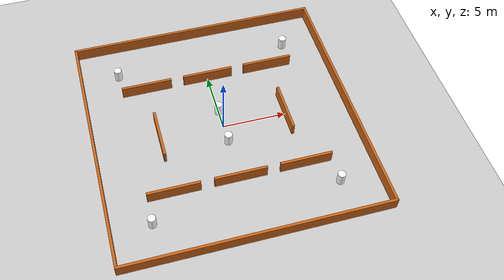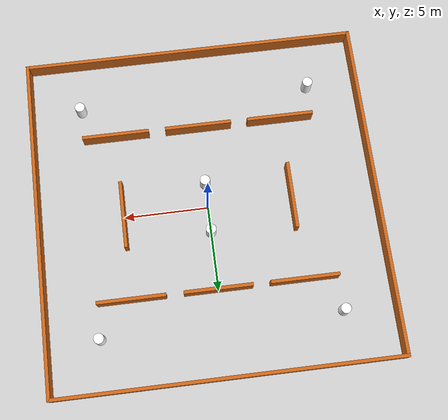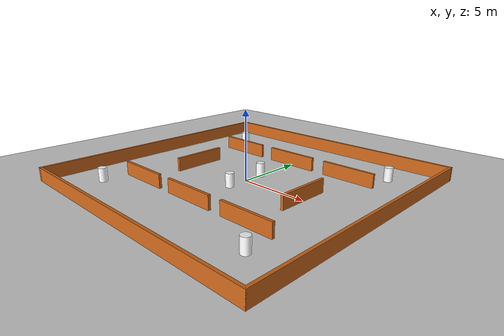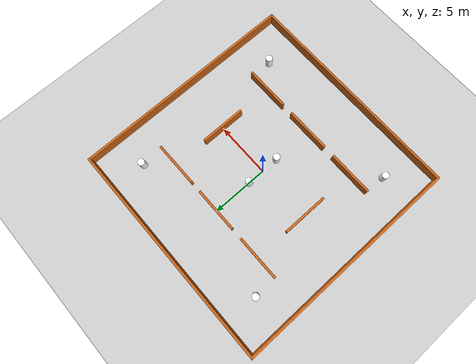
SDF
<?xml version="1.0" ?>
<sdf version="1.9">
  <world name="static_world">
    <physics name="1ms" type="ignored">
      <max_step_size>0.001</max_step_size>
      <real_time_factor>1.0</real_time_factor>
    </physics>

    <plugin
      filename="gz-sim-physics-system"
      name="gz::sim::systems::Physics">
    </plugin>
    <plugin
      filename="gz-sim-user-commands-system"
      name="gz::sim::systems::UserCommands">
    </plugin>
    <plugin
      filename="gz-sim-scene-broadcaster-system"
      name="gz::sim::systems::SceneBroadcaster">
    </plugin>
    <plugin
      filename="gz-sim-contact-system"
      name="gz::sim::systems::Contact">
    </plugin>
    <plugin
      filename="gz-sim-sensors-system"
      name="gz::sim::systems::Sensors">
      <render_engine>ogre2</render_engine>
    </plugin>

    <light type="directional" name="sun">
      <cast_shadows>true</cast_shadows>
      <pose>0 0 10 0 0 0</pose>
      <diffuse>0.8 0.8 0.8 1</diffuse>
      <specular>0.2 0.2 0.2 1</specular>
      <attenuation>
        <range>1000</range>
        <constant>0.9</constant>
        <linear>0.01</linear>
        <quadratic>0.001</quadratic>
      </attenuation>
      <direction>-0.5 0.1 -0.9</direction>
    </light>

    <model name="ground_plane">
      <static>true</static>
      <link name="link">
        <collision name="collision">
          <geometry>
            <plane>
              <normal>0 0 1</normal>
              <size>100 100</size>
            </plane>
          </geometry>
        </collision>
        <visual name="visual">
          <geometry>
            <plane>
              <normal>0 0 1</normal>
              <size>100 100</size>
            </plane>
          </geometry>
          <material>
            <ambient>0.8 0.8 0.8 1</ambient>
            <diffuse>0.8 0.8 0.8 1</diffuse>
            <specular>0.8 0.8 0.8 1</specular>
          </material>
        </visual>
      </link>
    </model>

    <!-- Outer Walls (20x20m) -->
    <include>
      <uri>model://outer_walls</uri>
      <name>outer_walls</name>
      <pose>0 0 0 0 0 0</pose>
    </include>

    <!-- Symmetric Layout: "Four Rooms" / Cross Pattern -->
    <!-- Center is (0,0) -->

    <!-- Inner Square Walls (forming a central hub) -->
    <include>
      <uri>model://wall_1</uri>
      <name>wall_1</name>
      <pose>0 5 0 0 0 0</pose>
    </include>
    <include>
      <uri>model://wall_2</uri>
      <name>wall_2</name>
      <pose>0 -5 0 0 0 0</pose>
    </include>
    <include>
      <uri>model://wall_3</uri>
      <name>wall_3</name>
      <pose>5 0 0 0 0 1.57</pose>
    </include>
    <include>
      <uri>model://wall_4</uri>
      <name>wall_4</name>
      <pose>-5 0 0 0 0 1.57</pose>
    </include>

    <!-- Outer Corridors -->
    <include>
      <uri>model://wall_5</uri>
      <name>wall_5</name>
      <pose>5 5 0 0 0 0</pose>
    </include>
    <include>
      <uri>model://wall_6</uri>
      <name>wall_6</name>
      <pose>-5 5 0 0 0 0</pose>
    </include>
    <include>
      <uri>model://wall_7</uri>
      <name>wall_7</name>
      <pose>5 -5 0 0 0 0</pose>
    </include>
    <include>
      <uri>model://wall_8</uri>
      <name>wall_8</name>
      <pose>-5 -5 0 0 0 0</pose>
    </include>

    <!-- Obstacles (Symmetrically placed in corners) -->
    <include>
      <uri>model://obs_1</uri>
      <name>obs_1</name>
      <pose>7 7 0 0 0 0</pose>
    </include>
    <include>
      <uri>model://obs_2</uri>
      <name>obs_2</name>
      <pose>-7 7 0 0 0 0</pose>
    </include>
    <include>
      <uri>model://obs_3</uri>
      <name>obs_3</name>
      <pose>7 -7 0 0 0 0</pose>
    </include>
    <include>
      <uri>model://obs_4</uri>
      <name>obs_4</name>
      <pose>-7 -7 0 0 0 0</pose>
    </include>

    <!-- New Central Obstacles (Red Box Area) -->
    <include>
      <uri>model://obs_5</uri>
      <name>obs_5</name>
      <pose>0 1.5 0 0 0 0</pose>
    </include>
    <include>
      <uri>model://obs_6</uri>
      <name>obs_6</name>
      <pose>0 -1.5 0 0 0 0</pose>
    </include>

    <!-- Goal Marker -->

  </world>
</sdf>

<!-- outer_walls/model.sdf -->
<sdf version="1.9">
  <model name="outer_walls">
    <static>true</static>
    <link name="link">
      <collision name="collision_north">
        <pose>0 10 0.5 0 0 0</pose>
        <geometry>
          <box>
            <size>20.2 0.2 1</size>
          </box>
        </geometry>
      </collision>
      <visual name="visual_north">
        <pose>0 10 0.5 0 0 0</pose>
        <geometry>
          <box>
            <size>20.2 0.2 1</size>
          </box>
        </geometry>
        <material>
          <ambient>0.8 0.4 0.1 1</ambient>
          <diffuse>0.8 0.4 0.1 1</diffuse>
        </material>
      </visual>

      <collision name="collision_south">
        <pose>0 -10 0.5 0 0 0</pose>
        <geometry>
          <box>
            <size>20.2 0.2 1</size>
          </box>
        </geometry>
      </collision>
      <visual name="visual_south">
        <pose>0 -10 0.5 0 0 0</pose>
        <geometry>
          <box>
            <size>20.2 0.2 1</size>
          </box>
        </geometry>
        <material>
          <ambient>0.8 0.4 0.1 1</ambient>
          <diffuse>0.8 0.4 0.1 1</diffuse>
        </material>
      </visual>

      <collision name="collision_east">
        <pose>10 0 0.5 0 0 0</pose>
        <geometry>
          <box>
            <size>0.2 20.2 1</size>
          </box>
        </geometry>
      </collision>
      <visual name="visual_east">
        <pose>10 0 0.5 0 0 0</pose>
        <geometry>
          <box>
            <size>0.2 20.2 1</size>
          </box>
        </geometry>
        <material>
          <ambient>0.8 0.4 0.1 1</ambient>
          <diffuse>0.8 0.4 0.1 1</diffuse>
        </material>
      </visual>

      <collision name="collision_west">
        <pose>-10 0 0.5 0 0 0</pose>
        <geometry>
          <box>
            <size>0.2 20.2 1</size>
          </box>
        </geometry>
      </collision>
      <visual name="visual_west">
        <pose>-10 0 0.5 0 0 0</pose>
        <geometry>
          <box>
            <size>0.2 20.2 1</size>
          </box>
        </geometry>
        <material>
          <ambient>0.8 0.4 0.1 1</ambient>
          <diffuse>0.8 0.4 0.1 1</diffuse>
        </material>
      </visual>
    </link>
  </model>
</sdf>

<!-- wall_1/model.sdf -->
<sdf version="1.9">
  <model name="wall_1">
    <static>true</static>
    <link name="link">
      <collision name="collision">
        <pose>0 0 0.5 0 0 0</pose>
        <geometry>
          <box>
            <size>4.0 0.2 1.0</size>
          </box>
        </geometry>
      </collision>
      <visual name="visual">
        <pose>0 0 0.5 0 0 0</pose>
        <geometry>
          <box>
            <size>4.0 0.2 1.0</size>
          </box>
        </geometry>
        <material>
          <ambient>0.8 0.4 0.1 1</ambient>
          <diffuse>0.8 0.4 0.1 1</diffuse>
        </material>
      </visual>
    </link>
  </model>
</sdf>

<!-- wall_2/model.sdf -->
<sdf version="1.9">
  <model name="wall_2">
    <static>true</static>
    <link name="link">
      <collision name="collision">
        <pose>0 0 0.5 0 0 0</pose>
        <geometry>
          <box>
            <size>4.0 0.2 1.0</size>
          </box>
        </geometry>
      </collision>
      <visual name="visual">
        <pose>0 0 0.5 0 0 0</pose>
        <geometry>
          <box>
            <size>4.0 0.2 1.0</size>
          </box>
        </geometry>
        <material>
          <ambient>0.8 0.4 0.1 1</ambient>
          <diffuse>0.8 0.4 0.1 1</diffuse>
        </material>
      </visual>
    </link>
  </model>
</sdf>

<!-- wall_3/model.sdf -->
<sdf version="1.9">
  <model name="wall_3">
    <static>true</static>
    <link name="link">
      <collision name="collision">
        <pose>0 0 0.5 0 0 0</pose>
        <geometry>
          <box>
            <size>4.0 0.2 1.0</size>
          </box>
        </geometry>
      </collision>
      <visual name="visual">
        <pose>0 0 0.5 0 0 0</pose>
        <geometry>
          <box>
            <size>4.0 0.2 1.0</size>
          </box>
        </geometry>
        <material>
          <ambient>0.8 0.4 0.1 1</ambient>
          <diffuse>0.8 0.4 0.1 1</diffuse>
        </material>
      </visual>
    </link>
  </model>
</sdf>

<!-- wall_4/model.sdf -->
<sdf version="1.9">
  <model name="wall_4">
    <static>true</static>
    <link name="link">
      <collision name="collision">
        <pose>0 0 0.5 0 0 0</pose>
        <geometry>
          <box>
            <size>4.0 0.2 1.0</size>
          </box>
        </geometry>
      </collision>
      <visual name="visual">
        <pose>0 0 0.5 0 0 0</pose>
        <geometry>
          <box>
            <size>4.0 0.2 1.0</size>
          </box>
        </geometry>
        <material>
          <ambient>0.8 0.4 0.1 1</ambient>
          <diffuse>0.8 0.4 0.1 1</diffuse>
        </material>
      </visual>
    </link>
  </model>
</sdf>

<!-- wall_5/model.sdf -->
<sdf version="1.9">
  <model name="wall_5">
    <static>true</static>
    <link name="link">
      <collision name="collision">
        <pose>0 0 0.5 0 0 0</pose>
        <geometry>
          <box>
            <size>4.0 0.2 1.0</size>
          </box>
        </geometry>
      </collision>
      <visual name="visual">
        <pose>0 0 0.5 0 0 0</pose>
        <geometry>
          <box>
            <size>4.0 0.2 1.0</size>
          </box>
        </geometry>
        <material>
          <ambient>0.8 0.4 0.1 1</ambient>
          <diffuse>0.8 0.4 0.1 1</diffuse>
        </material>
      </visual>
    </link>
  </model>
</sdf>

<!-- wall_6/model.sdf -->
<sdf version="1.9">
  <model name="wall_6">
    <static>true</static>
    <link name="link">
      <collision name="collision">
        <pose>0 0 0.5 0 0 0</pose>
        <geometry>
          <box>
            <size>4.0 0.2 1.0</size>
          </box>
        </geometry>
      </collision>
      <visual name="visual">
        <pose>0 0 0.5 0 0 0</pose>
        <geometry>
          <box>
            <size>4.0 0.2 1.0</size>
          </box>
        </geometry>
        <material>
          <ambient>0.8 0.4 0.1 1</ambient>
          <diffuse>0.8 0.4 0.1 1</diffuse>
        </material>
      </visual>
    </link>
  </model>
</sdf>

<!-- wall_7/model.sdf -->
<sdf version="1.9">
  <model name="wall_7">
    <static>true</static>
    <link name="link">
      <collision name="collision">
        <pose>0 0 0.5 0 0 0</pose>
        <geometry>
          <box>
            <size>4.0 0.2 1.0</size>
          </box>
        </geometry>
      </collision>
      <visual name="visual">
        <pose>0 0 0.5 0 0 0</pose>
        <geometry>
          <box>
            <size>4.0 0.2 1.0</size>
          </box>
        </geometry>
        <material>
          <ambient>0.8 0.4 0.1 1</ambient>
          <diffuse>0.8 0.4 0.1 1</diffuse>
        </material>
      </visual>
    </link>
  </model>
</sdf>

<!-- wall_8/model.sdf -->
<sdf version="1.9">
  <model name="wall_8">
    <static>true</static>
    <link name="link">
      <collision name="collision">
        <pose>0 0 0.5 0 0 0</pose>
        <geometry>
          <box>
            <size>4.0 0.2 1.0</size>
          </box>
        </geometry>
      </collision>
      <visual name="visual">
        <pose>0 0 0.5 0 0 0</pose>
        <geometry>
          <box>
            <size>4.0 0.2 1.0</size>
          </box>
        </geometry>
        <material>
          <ambient>0.8 0.4 0.1 1</ambient>
          <diffuse>0.8 0.4 0.1 1</diffuse>
        </material>
      </visual>
    </link>
  </model>
</sdf>

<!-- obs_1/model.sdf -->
<sdf version="1.9">
  <model name="obs_1">
    <static>true</static>
    <link name="link">
      <collision name="collision">
        <pose>0 0 0.5 0 0 0</pose>
        <geometry>
          <cylinder>
            <radius>0.3</radius>
            <length>1.0</length>
          </cylinder>
        </geometry>
      </collision>
      <visual name="visual">
        <pose>0 0 0.5 0 0 0</pose>
        <geometry>
          <cylinder>
            <radius>0.3</radius>
            <length>1.0</length>
          </cylinder>
        </geometry>
        <material>
          <ambient>1 1 1 1</ambient>
          <diffuse>1 1 1 1</diffuse>
        </material>
      </visual>
    </link>
  </model>
</sdf>

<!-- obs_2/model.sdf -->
<sdf version="1.9">
  <model name="obs_2">
    <static>true</static>
    <link name="link">
      <collision name="collision">
        <pose>0 0 0.5 0 0 0</pose>
        <geometry>
          <cylinder>
            <radius>0.3</radius>
            <length>1.0</length>
          </cylinder>
        </geometry>
      </collision>
      <visual name="visual">
        <pose>0 0 0.5 0 0 0</pose>
        <geometry>
          <cylinder>
            <radius>0.3</radius>
            <length>1.0</length>
          </cylinder>
        </geometry>
        <material>
          <ambient>1 1 1 1</ambient>
          <diffuse>1 1 1 1</diffuse>
        </material>
      </visual>
    </link>
  </model>
</sdf>

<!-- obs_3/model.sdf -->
<sdf version="1.9">
  <model name="obs_3">
    <static>true</static>
    <link name="link">
      <collision name="collision">
        <pose>0 0 0.5 0 0 0</pose>
        <geometry>
          <cylinder>
            <radius>0.3</radius>
            <length>1.0</length>
          </cylinder>
        </geometry>
      </collision>
      <visual name="visual">
        <pose>0 0 0.5 0 0 0</pose>
        <geometry>
          <cylinder>
            <radius>0.3</radius>
            <length>1.0</length>
          </cylinder>
        </geometry>
        <material>
          <ambient>1 1 1 1</ambient>
          <diffuse>1 1 1 1</diffuse>
        </material>
      </visual>
    </link>
  </model>
</sdf>

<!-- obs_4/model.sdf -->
<sdf version="1.9">
  <model name="obs_4">
    <static>true</static>
    <link name="link">
      <collision name="collision">
        <pose>0 0 0.5 0 0 0</pose>
        <geometry>
          <cylinder>
            <radius>0.3</radius>
            <length>1.0</length>
          </cylinder>
        </geometry>
      </collision>
      <visual name="visual">
        <pose>0 0 0.5 0 0 0</pose>
        <geometry>
          <cylinder>
            <radius>0.3</radius>
            <length>1.0</length>
          </cylinder>
        </geometry>
        <material>
          <ambient>1 1 1 1</ambient>
          <diffuse>1 1 1 1</diffuse>
        </material>
      </visual>
    </link>
  </model>
</sdf>

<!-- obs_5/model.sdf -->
<sdf version="1.9">
  <model name="obs_5">
    <static>true</static>
    <link name="link">
      <collision name="collision">
        <pose>0 0 0.5 0 0 0</pose>
        <geometry>
          <cylinder>
            <radius>0.3</radius>
            <length>1.0</length>
          </cylinder>
        </geometry>
      </collision>
      <visual name="visual">
        <pose>0 0 0.5 0 0 0</pose>
        <geometry>
          <cylinder>
            <radius>0.3</radius>
            <length>1.0</length>
          </cylinder>
        </geometry>
        <material>
          <ambient>1 1 1 1</ambient>
          <diffuse>1 1 1 1</diffuse>
        </material>
      </visual>
    </link>
  </model>
</sdf>

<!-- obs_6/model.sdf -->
<sdf version="1.9">
  <model name="obs_6">
    <static>true</static>
    <link name="link">
      <collision name="collision">
        <pose>0 0 0.5 0 0 0</pose>
        <geometry>
          <cylinder>
            <radius>0.3</radius>
            <length>1.0</length>
          </cylinder>
        </geometry>
      </collision>
      <visual name="visual">
        <pose>0 0 0.5 0 0 0</pose>
        <geometry>
          <cylinder>
            <radius>0.3</radius>
            <length>1.0</length>
          </cylinder>
        </geometry>
        <material>
          <ambient>1 1 1 1</ambient>
          <diffuse>1 1 1 1</diffuse>
        </material>
      </visual>
    </link>
  </model>
</sdf>
